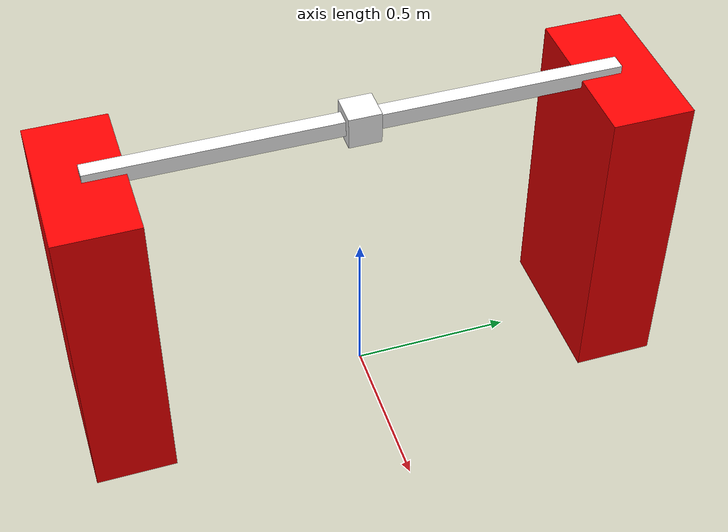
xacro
<?xml version="1.0"?>
<robot xmlns:xacro="http://www.ros.org/wiki/xacro" name="jetleg_testrig_odrive">

    <xacro:include filename="$(find jetleg_description)/urdf/testrig.xacro"/>
    <xacro:include filename="$(find jetleg_description)/ros2_control/jetleg.ros2_control.xacro"/>
    <xacro:jetleg_ros2_control name="jetleg_ros2_control"/>
</robot>

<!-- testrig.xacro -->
<robot xmlns:xacro="http://www.ros.org/wiki/xacro" name="testrig">

    <xacro:include filename="$(find jetleg_description)/urdf/colors.xacro" />
    <xacro:include filename="$(find jetleg_description)/urdf/gazebo/testrig_gazebo.xacro" />

    <xacro:property name="gantry_height" value="1" />
    <xacro:property name="gantry_width" value="1.6" />
    <xacro:property name="mount_angle_lim" value="${40*pi/180}" />
    <xacro:property name="mount_length" value="0.24" />

    <link name="base_link">
    </link>

    <link name="vertical_rail">
        <visual>
            <geometry>
                <box size="0.1 0.1 0.1"/>
            </geometry>
            <material name="white"/>
        </visual>
        <inertial>
            <mass value="30"/>
            <inertia ixx="1" ixy="0" ixz="0" iyy="1" iyz="0" izz="1"/>
        </inertial>
    </link>

    <link name="gantry">
        <visual>
            <geometry>
                <box size="0.05 ${gantry_width} 0.05"/>
            </geometry>
            <material name="white"/>
        </visual>

        <inertial>
            <mass value="1"/>
            <inertia ixx="1" ixy="0" ixz="0" iyy="1" iyz="0" izz="1"/>
        </inertial>
    </link>

    <xacro:macro name="support" params="postfix reflect">
        <link name="support_${postfix}">
            <visual>
                <geometry>
                    <box size="0.5 0.25 ${gantry_height}"/>
                </geometry>
                <material name="red"/>
            </visual>
            <collision>
                <geometry>
                    <box size="0.5 0.25 ${gantry_height}"/>
                </geometry>
            </collision>
            <inertial>
                <mass value="1000"/>
                <inertia ixx="1" ixy="0" ixz="0" iyy="1" iyz="0" izz="1"/>
            </inertial>
        </link>

        <joint name="gantry_to_support_${postfix}" type="fixed">
            <parent link="gantry"/>
            <child link="support_${postfix}"/>
            <origin xyz="0 ${reflect * gantry_width/2} ${-gantry_height/2}" />
        </joint>
    </xacro:macro>

    <xacro:support postfix="left" reflect="1" />
    <xacro:support postfix="right" reflect="-1" />

    <joint name="base_to_gantry" type="fixed">
        <origin rpy="0 0 0" xyz="0 0 ${gantry_height}"/>
        <parent link="base_link"/>
        <child link="gantry"/>
    </joint>

    <joint name="gantry_to_vertical_rail" type="fixed">
        <origin rpy="0 0 0" xyz="0 0 0"/>
        <parent link="gantry"/>
        <child link="vertical_rail"/>
    </joint>

</robot>

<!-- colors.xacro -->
<robot xmlns:xacro="http://www.ros.org/wiki/xacro" name="colors">
    <material name="white">
        <color rgba="1 1 1 1"/>
    </material>
    <material name="black">
        <color rgba="0 0 0 1"/>
    </material>
    <material name="grey">
        <color rgba="0.5 0.5 0.5 1"/>
    </material>
    <material name="red">
        <color rgba="1 0 0 1"/>
    </material>
    <material name="red_transluscent">
        <color rgba="1 0 0 0.25"/>
    </material>
    <material name="white_transluscent">
        <color rgba="1 1 1 0.25"/>
    </material>
</robot>
